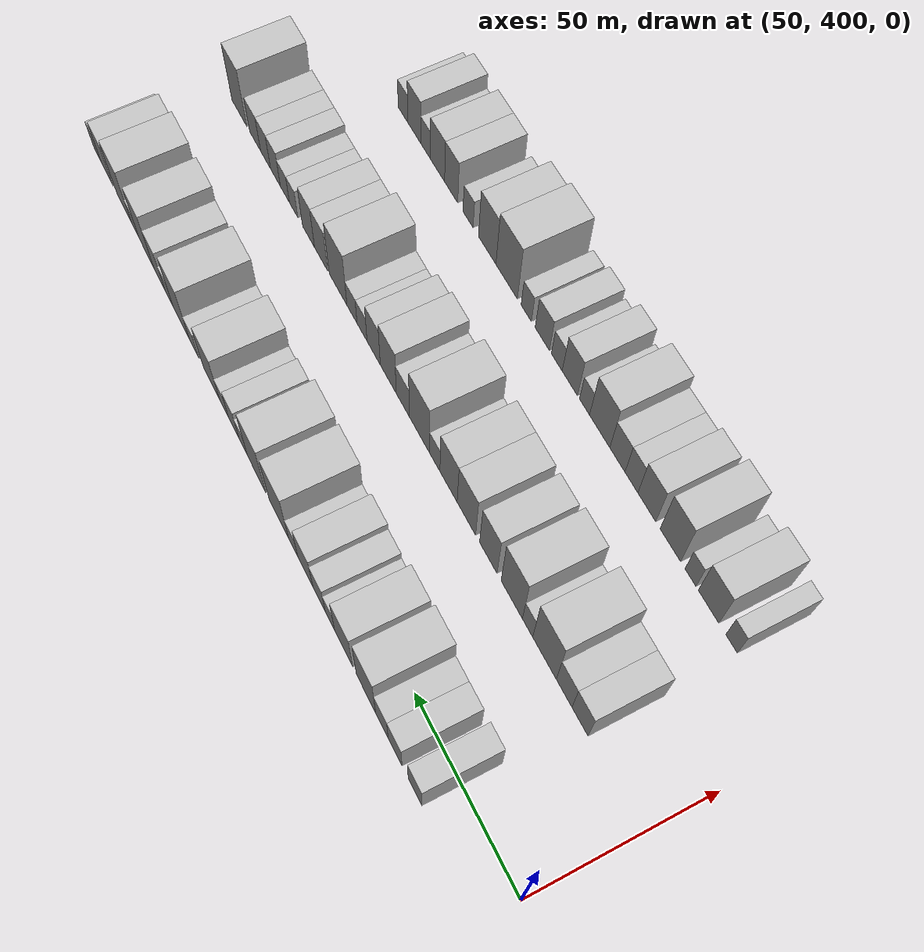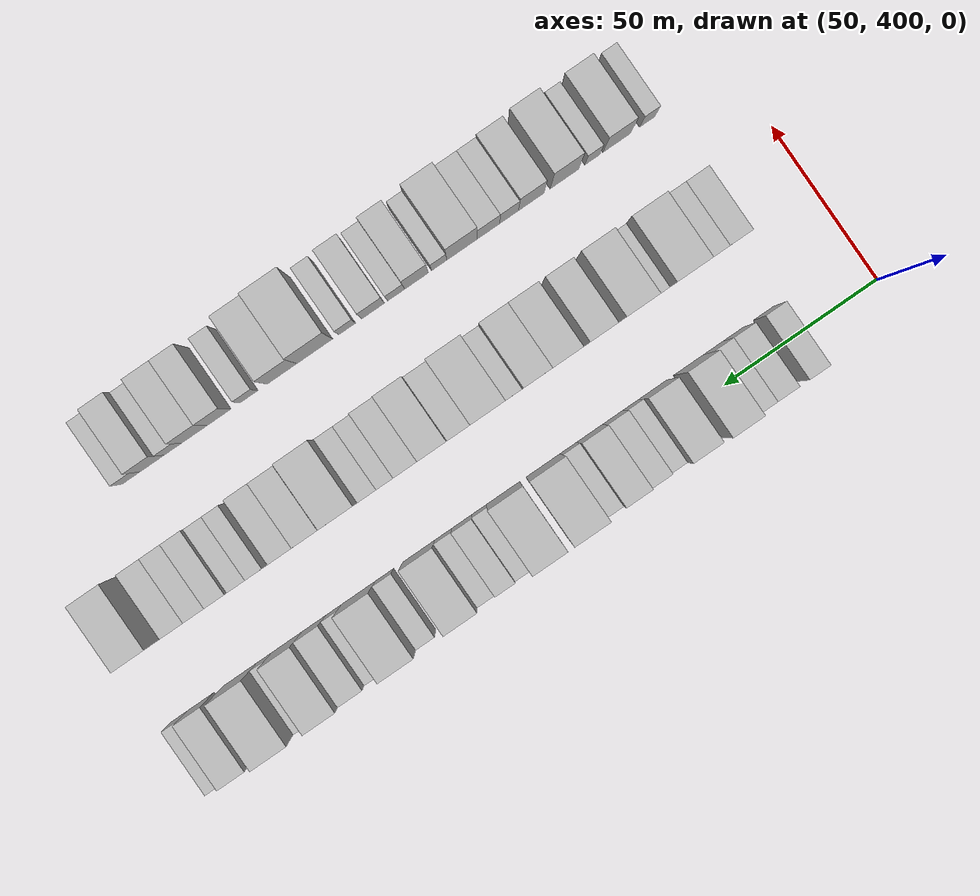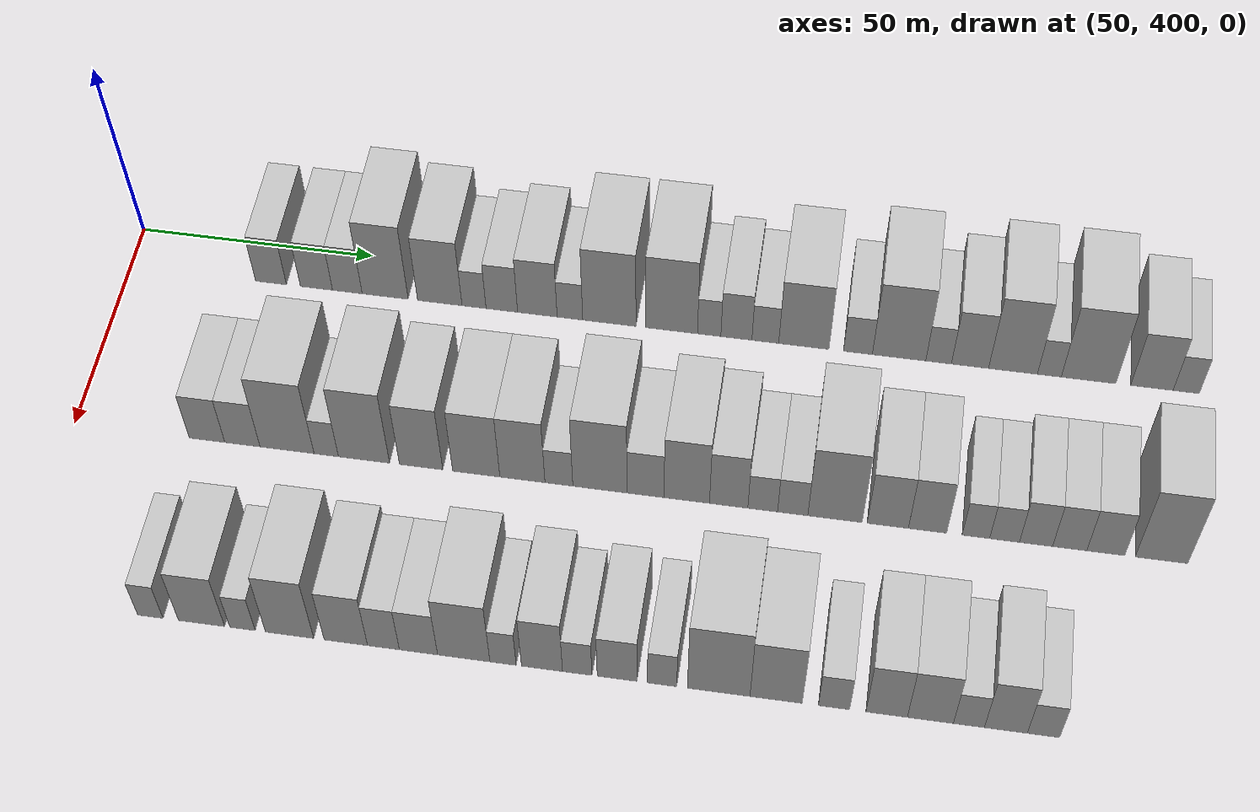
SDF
<sdf version="1.6">
 <world name="default">
  <model name="building_120">
   <static>1</static>
   <pose>50.0000 430.4025 0 0.000000 0.000000 0.000000</pose>
   <link name="link">
    <pose>0 0 7.50 0 0 0</pose>
    <collision name="collision"><geometry><box><size>20.0000 6.6508 15.0000</size></box></geometry></collision>
    <visual name="visual">
     <cast_shadows>0</cast_shadows>
     <geometry><box><size>20.0000 6.6508 15.0000</size></box></geometry>
     <material>
      <script>
       <uri>model://HANNAS_wall/materials/scripts</uri>
       <uri>model://HANNAS_wall/materials/textures</uri>
       <name>vrc/HANNAS_wall</name>
      </script>
     </material>
    </visual>
   </link>
  </model>
  <model name="building_121">
   <static>1</static>
   <pose>50.0000 440.1727 0 0.000000 0.000000 0.000000</pose>
   <link name="link">
    <pose>0 0 7.50 0 0 0</pose>
    <collision name="collision"><geometry><box><size>20.0000 6.8895 15.0000</size></box></geometry></collision>
    <visual name="visual">
     <cast_shadows>0</cast_shadows>
     <geometry><box><size>20.0000 6.8895 15.0000</size></box></geometry>
     <material>
      <script>
       <uri>model://HANNAS_wall/materials/scripts</uri>
       <uri>model://HANNAS_wall/materials/textures</uri>
       <name>vrc/HANNAS_wall</name>
      </script>
     </material>
    </visual>
   </link>
  </model>
  <model name="building_122">
   <static>1</static>
   <pose>50.0000 446.7971 0 0.000000 0.000000 0.000000</pose>
   <link name="link">
    <pose>0 0 7.50 0 0 0</pose>
    <collision name="collision"><geometry><box><size>20.0000 6.3591 15.0000</size></box></geometry></collision>
    <visual name="visual">
     <cast_shadows>0</cast_shadows>
     <geometry><box><size>20.0000 6.3591 15.0000</size></box></geometry>
     <material>
      <script>
       <uri>model://HANNAS_wall/materials/scripts</uri>
       <uri>model://HANNAS_wall/materials/textures</uri>
       <name>vrc/HANNAS_wall</name>
      </script>
     </material>
    </visual>
   </link>
  </model>
  <model name="building_123">
   <static>1</static>
   <pose>50.0000 454.8843 0 0.000000 0.000000 0.000000</pose>
   <link name="link">
    <pose>0 0 12.00 0 0 0</pose>
    <collision name="collision"><geometry><box><size>20.0000 9.8154 24.0000</size></box></geometry></collision>
    <visual name="visual">
     <cast_shadows>0</cast_shadows>
     <geometry><box><size>20.0000 9.8154 24.0000</size></box></geometry>
     <material>
      <script>
       <uri>model://HANNAS_wall/materials/scripts</uri>
       <uri>model://HANNAS_wall/materials/textures</uri>
       <name>vrc/HANNAS_wall</name>
      </script>
     </material>
    </visual>
   </link>
  </model>
  <model name="building_124">
   <static>1</static>
   <pose>50.0000 466.5108 0 0.000000 0.000000 0.000000</pose>
   <link name="link">
    <pose>0 0 10.50 0 0 0</pose>
    <collision name="collision"><geometry><box><size>20.0000 9.4374 21.0000</size></box></geometry></collision>
    <visual name="visual">
     <cast_shadows>0</cast_shadows>
     <geometry><box><size>20.0000 9.4374 21.0000</size></box></geometry>
     <material>
      <script>
       <uri>model://HANNAS_wall/materials/scripts</uri>
       <uri>model://HANNAS_wall/materials/textures</uri>
       <name>vrc/HANNAS_wall</name>
      </script>
     </material>
    </visual>
   </link>
  </model>
  <model name="building_125">
   <static>1</static>
   <pose>50.0000 473.7779 0 0.000000 0.000000 0.000000</pose>
   <link name="link">
    <pose>0 0 6.00 0 0 0</pose>
    <collision name="collision"><geometry><box><size>20.0000 5.0968 12.0000</size></box></geometry></collision>
    <visual name="visual">
     <cast_shadows>0</cast_shadows>
     <geometry><box><size>20.0000 5.0968 12.0000</size></box></geometry>
     <material>
      <script>
       <uri>model://HANNAS_wall/materials/scripts</uri>
       <uri>model://HANNAS_wall/materials/textures</uri>
       <name>vrc/HANNAS_wall</name>
      </script>
     </material>
    </visual>
   </link>
  </model>
  <model name="building_126">
   <static>1</static>
   <pose>50.0000 479.6608 0 0.000000 0.000000 0.000000</pose>
   <link name="link">
    <pose>0 0 7.50 0 0 0</pose>
    <collision name="collision"><geometry><box><size>20.0000 6.6692 15.0000</size></box></geometry></collision>
    <visual name="visual">
     <cast_shadows>0</cast_shadows>
     <geometry><box><size>20.0000 6.6692 15.0000</size></box></geometry>
     <material>
      <script>
       <uri>model://HANNAS_wall/materials/scripts</uri>
       <uri>model://HANNAS_wall/materials/textures</uri>
       <name>vrc/HANNAS_wall</name>
      </script>
     </material>
    </visual>
   </link>
  </model>
  <model name="building_127">
   <static>1</static>
   <pose>50.0000 487.1593 0 0.000000 0.000000 0.000000</pose>
   <link name="link">
    <pose>0 0 9.00 0 0 0</pose>
    <collision name="collision"><geometry><box><size>20.0000 8.3279 18.0000</size></box></geometry></collision>
    <visual name="visual">
     <cast_shadows>0</cast_shadows>
     <geometry><box><size>20.0000 8.3279 18.0000</size></box></geometry>
     <material>
      <script>
       <uri>model://HANNAS_wall/materials/scripts</uri>
       <uri>model://HANNAS_wall/materials/textures</uri>
       <name>vrc/HANNAS_wall</name>
      </script>
     </material>
    </visual>
   </link>
  </model>
  <model name="building_128">
   <static>1</static>
   <pose>50.0000 494.0206 0 0.000000 0.000000 0.000000</pose>
   <link name="link">
    <pose>0 0 6.00 0 0 0</pose>
    <collision name="collision"><geometry><box><size>20.0000 5.3946 12.0000</size></box></geometry></collision>
    <visual name="visual">
     <cast_shadows>0</cast_shadows>
     <geometry><box><size>20.0000 5.3946 12.0000</size></box></geometry>
     <material>
      <script>
       <uri>model://HANNAS_wall/materials/scripts</uri>
       <uri>model://HANNAS_wall/materials/textures</uri>
       <name>vrc/HANNAS_wall</name>
      </script>
     </material>
    </visual>
   </link>
  </model>
  <model name="building_129">
   <static>1</static>
   <pose>50.0000 502.2996 0 0.000000 0.000000 0.000000</pose>
   <link name="link">
    <pose>0 0 12.00 0 0 0</pose>
    <collision name="collision"><geometry><box><size>20.0000 11.1634 24.0000</size></box></geometry></collision>
    <visual name="visual">
     <cast_shadows>0</cast_shadows>
     <geometry><box><size>20.0000 11.1634 24.0000</size></box></geometry>
     <material>
      <script>
       <uri>model://HANNAS_wall/materials/scripts</uri>
       <uri>model://HANNAS_wall/materials/textures</uri>
       <name>vrc/HANNAS_wall</name>
      </script>
     </material>
    </visual>
   </link>
  </model>
  <model name="building_130">
   <static>1</static>
   <pose>50.0000 515.2925 0 0.000000 0.000000 0.000000</pose>
   <link name="link">
    <pose>0 0 12.00 0 0 0</pose>
    <collision name="collision"><geometry><box><size>20.0000 10.8223 24.0000</size></box></geometry></collision>
    <visual name="visual">
     <cast_shadows>0</cast_shadows>
     <geometry><box><size>20.0000 10.8223 24.0000</size></box></geometry>
     <material>
      <script>
       <uri>model://HANNAS_wall/materials/scripts</uri>
       <uri>model://HANNAS_wall/materials/textures</uri>
       <name>vrc/HANNAS_wall</name>
      </script>
     </material>
    </visual>
   </link>
  </model>
  <model name="building_131">
   <static>1</static>
   <pose>50.0000 523.1406 0 0.000000 0.000000 0.000000</pose>
   <link name="link">
    <pose>0 0 6.00 0 0 0</pose>
    <collision name="collision"><geometry><box><size>20.0000 4.8738 12.0000</size></box></geometry></collision>
    <visual name="visual">
     <cast_shadows>0</cast_shadows>
     <geometry><box><size>20.0000 4.8738 12.0000</size></box></geometry>
     <material>
      <script>
       <uri>model://HANNAS_wall/materials/scripts</uri>
       <uri>model://HANNAS_wall/materials/textures</uri>
       <name>vrc/HANNAS_wall</name>
      </script>
     </material>
    </visual>
   </link>
  </model>
  <model name="building_132">
   <static>1</static>
   <pose>50.0000 528.8001 0 0.000000 0.000000 0.000000</pose>
   <link name="link">
    <pose>0 0 7.50 0 0 0</pose>
    <collision name="collision"><geometry><box><size>20.0000 6.4453 15.0000</size></box></geometry></collision>
    <visual name="visual">
     <cast_shadows>0</cast_shadows>
     <geometry><box><size>20.0000 6.4453 15.0000</size></box></geometry>
     <material>
      <script>
       <uri>model://HANNAS_wall/materials/scripts</uri>
       <uri>model://HANNAS_wall/materials/textures</uri>
       <name>vrc/HANNAS_wall</name>
      </script>
     </material>
    </visual>
   </link>
  </model>
  <model name="building_133">
   <static>1</static>
   <pose>50.0000 534.7990 0 0.000000 0.000000 0.000000</pose>
   <link name="link">
    <pose>0 0 6.00 0 0 0</pose>
    <collision name="collision"><geometry><box><size>20.0000 5.5525 12.0000</size></box></geometry></collision>
    <visual name="visual">
     <cast_shadows>0</cast_shadows>
     <geometry><box><size>20.0000 5.5525 12.0000</size></box></geometry>
     <material>
      <script>
       <uri>model://HANNAS_wall/materials/scripts</uri>
       <uri>model://HANNAS_wall/materials/textures</uri>
       <name>vrc/HANNAS_wall</name>
      </script>
     </material>
    </visual>
   </link>
  </model>
  <model name="building_134">
   <static>1</static>
   <pose>50.0000 542.7679 0 0.000000 0.000000 0.000000</pose>
   <link name="link">
    <pose>0 0 10.50 0 0 0</pose>
    <collision name="collision"><geometry><box><size>20.0000 10.3852 21.0000</size></box></geometry></collision>
    <visual name="visual">
     <cast_shadows>0</cast_shadows>
     <geometry><box><size>20.0000 10.3852 21.0000</size></box></geometry>
     <material>
      <script>
       <uri>model://HANNAS_wall/materials/scripts</uri>
       <uri>model://HANNAS_wall/materials/textures</uri>
       <name>vrc/HANNAS_wall</name>
      </script>
     </material>
    </visual>
   </link>
  </model>
  <model name="building_135">
   <static>1</static>
   <pose>50.0000 553.9243 0 0.000000 0.000000 0.000000</pose>
   <link name="link">
    <pose>0 0 6.00 0 0 0</pose>
    <collision name="collision"><geometry><box><size>20.0000 5.9277 12.0000</size></box></geometry></collision>
    <visual name="visual">
     <cast_shadows>0</cast_shadows>
     <geometry><box><size>20.0000 5.9277 12.0000</size></box></geometry>
     <material>
      <script>
       <uri>model://HANNAS_wall/materials/scripts</uri>
       <uri>model://HANNAS_wall/materials/textures</uri>
       <name>vrc/HANNAS_wall</name>
      </script>
     </material>
    </visual>
   </link>
  </model>
  <model name="building_136">
   <static>1</static>
   <pose>50.0000 562.3670 0 0.000000 0.000000 0.000000</pose>
   <link name="link">
    <pose>0 0 12.00 0 0 0</pose>
    <collision name="collision"><geometry><box><size>20.0000 10.9577 24.0000</size></box></geometry></collision>
    <visual name="visual">
     <cast_shadows>0</cast_shadows>
     <geometry><box><size>20.0000 10.9577 24.0000</size></box></geometry>
     <material>
      <script>
       <uri>model://HANNAS_wall/materials/scripts</uri>
       <uri>model://HANNAS_wall/materials/textures</uri>
       <name>vrc/HANNAS_wall</name>
      </script>
     </material>
    </visual>
   </link>
  </model>
  <model name="building_137">
   <static>1</static>
   <pose>50.0000 570.4646 0 0.000000 0.000000 0.000000</pose>
   <link name="link">
    <pose>0 0 6.00 0 0 0</pose>
    <collision name="collision"><geometry><box><size>20.0000 5.2376 12.0000</size></box></geometry></collision>
    <visual name="visual">
     <cast_shadows>0</cast_shadows>
     <geometry><box><size>20.0000 5.2376 12.0000</size></box></geometry>
     <material>
      <script>
       <uri>model://HANNAS_wall/materials/scripts</uri>
       <uri>model://HANNAS_wall/materials/textures</uri>
       <name>vrc/HANNAS_wall</name>
      </script>
     </material>
    </visual>
   </link>
  </model>
  <model name="building_138">
   <static>1</static>
   <pose>50.0000 576.8740 0 0.000000 0.000000 0.000000</pose>
   <link name="link">
    <pose>0 0 9.00 0 0 0</pose>
    <collision name="collision"><geometry><box><size>20.0000 7.5812 18.0000</size></box></geometry></collision>
    <visual name="visual">
     <cast_shadows>0</cast_shadows>
     <geometry><box><size>20.0000 7.5812 18.0000</size></box></geometry>
     <material>
      <script>
       <uri>model://HANNAS_wall/materials/scripts</uri>
       <uri>model://HANNAS_wall/materials/textures</uri>
       <name>vrc/HANNAS_wall</name>
      </script>
     </material>
    </visual>
   </link>
  </model>
  <model name="building_139">
   <static>1</static>
   <pose>50.0000 585.6315 0 0.000000 0.000000 0.000000</pose>
   <link name="link">
    <pose>0 0 12.00 0 0 0</pose>
    <collision name="collision"><geometry><box><size>20.0000 9.9339 24.0000</size></box></geometry></collision>
    <visual name="visual">
     <cast_shadows>0</cast_shadows>
     <geometry><box><size>20.0000 9.9339 24.0000</size></box></geometry>
     <material>
      <script>
       <uri>model://HANNAS_wall/materials/scripts</uri>
       <uri>model://HANNAS_wall/materials/textures</uri>
       <name>vrc/HANNAS_wall</name>
      </script>
     </material>
    </visual>
   </link>
  </model>
  <model name="building_140">
   <static>1</static>
   <pose>50.0000 593.0165 0 0.000000 0.000000 0.000000</pose>
   <link name="link">
    <pose>0 0 6.00 0 0 0</pose>
    <collision name="collision"><geometry><box><size>20.0000 4.8361 12.0000</size></box></geometry></collision>
    <visual name="visual">
     <cast_shadows>0</cast_shadows>
     <geometry><box><size>20.0000 4.8361 12.0000</size></box></geometry>
     <material>
      <script>
       <uri>model://HANNAS_wall/materials/scripts</uri>
       <uri>model://HANNAS_wall/materials/textures</uri>
       <name>vrc/HANNAS_wall</name>
      </script>
     </material>
    </visual>
   </link>
  </model>
  <model name="building_141">
   <static>1</static>
   <pose>50.0000 600.9556 0 0.000000 0.000000 0.000000</pose>
   <link name="link">
    <pose>0 0 12.00 0 0 0</pose>
    <collision name="collision"><geometry><box><size>20.0000 11.0420 24.0000</size></box></geometry></collision>
    <visual name="visual">
     <cast_shadows>0</cast_shadows>
     <geometry><box><size>20.0000 11.0420 24.0000</size></box></geometry>
     <material>
      <script>
       <uri>model://HANNAS_wall/materials/scripts</uri>
       <uri>model://HANNAS_wall/materials/textures</uri>
       <name>vrc/HANNAS_wall</name>
      </script>
     </material>
    </visual>
   </link>
  </model>
  <model name="building_142">
   <static>1</static>
   <pose>50.0000 613.7397 0 0.000000 0.000000 0.000000</pose>
   <link name="link">
    <pose>0 0 9.00 0 0 0</pose>
    <collision name="collision"><geometry><box><size>20.0000 8.5261 18.0000</size></box></geometry></collision>
    <visual name="visual">
     <cast_shadows>0</cast_shadows>
     <geometry><box><size>20.0000 8.5261 18.0000</size></box></geometry>
     <material>
      <script>
       <uri>model://HANNAS_wall/materials/scripts</uri>
       <uri>model://HANNAS_wall/materials/textures</uri>
       <name>vrc/HANNAS_wall</name>
      </script>
     </material>
    </visual>
   </link>
  </model>
  <model name="building_143">
   <static>1</static>
   <pose>50.0000 620.6353 0 0.000000 0.000000 0.000000</pose>
   <link name="link">
    <pose>0 0 6.00 0 0 0</pose>
    <collision name="collision"><geometry><box><size>20.0000 5.2652 12.0000</size></box></geometry></collision>
    <visual name="visual">
     <cast_shadows>0</cast_shadows>
     <geometry><box><size>20.0000 5.2652 12.0000</size></box></geometry>
     <material>
      <script>
       <uri>model://HANNAS_wall/materials/scripts</uri>
       <uri>model://HANNAS_wall/materials/textures</uri>
       <name>vrc/HANNAS_wall</name>
      </script>
     </material>
    </visual>
   </link>
  </model>
  <model name="building_259">
   <static>1</static>
   <pose>90.0000 427.2750 0 0.000000 0.000000 0.000000</pose>
   <link name="link">
    <pose>0 0 7.50 0 0 0</pose>
    <collision name="collision"><geometry><box><size>20.0000 7.2798 15.0000</size></box></geometry></collision>
    <visual name="visual">
     <cast_shadows>0</cast_shadows>
     <geometry><box><size>20.0000 7.2798 15.0000</size></box></geometry>
     <material>
      <script>
       <uri>model://HANNAS_wall/materials/scripts</uri>
       <uri>model://HANNAS_wall/materials/textures</uri>
       <name>vrc/HANNAS_wall</name>
      </script>
     </material>
    </visual>
   </link>
  </model>
  <model name="building_260">
   <static>1</static>
   <pose>90.0000 434.5173 0 0.000000 0.000000 0.000000</pose>
   <link name="link">
    <pose>0 0 7.50 0 0 0</pose>
    <collision name="collision"><geometry><box><size>20.0000 7.2048 15.0000</size></box></geometry></collision>
    <visual name="visual">
     <cast_shadows>0</cast_shadows>
     <geometry><box><size>20.0000 7.2048 15.0000</size></box></geometry>
     <material>
      <script>
       <uri>model://HANNAS_wall/materials/scripts</uri>
       <uri>model://HANNAS_wall/materials/textures</uri>
       <name>vrc/HANNAS_wall</name>
      </script>
     </material>
    </visual>
   </link>
  </model>
  <model name="building_261">
   <static>1</static>
   <pose>90.0000 443.6315 0 0.000000 0.000000 0.000000</pose>
   <link name="link">
    <pose>0 0 12.00 0 0 0</pose>
    <collision name="collision"><geometry><box><size>20.0000 11.0235 24.0000</size></box></geometry></collision>
    <visual name="visual">
     <cast_shadows>0</cast_shadows>
     <geometry><box><size>20.0000 11.0235 24.0000</size></box></geometry>
     <material>
      <script>
       <uri>model://HANNAS_wall/materials/scripts</uri>
       <uri>model://HANNAS_wall/materials/textures</uri>
       <name>vrc/HANNAS_wall</name>
      </script>
     </material>
    </visual>
   </link>
  </model>
  <model name="building_262">
   <static>1</static>
   <pose>90.0000 451.6220 0 0.000000 0.000000 0.000000</pose>
   <link name="link">
    <pose>0 0 6.00 0 0 0</pose>
    <collision name="collision"><geometry><box><size>20.0000 4.9575 12.0000</size></box></geometry></collision>
    <visual name="visual">
     <cast_shadows>0</cast_shadows>
     <geometry><box><size>20.0000 4.9575 12.0000</size></box></geometry>
     <material>
      <script>
       <uri>model://HANNAS_wall/materials/scripts</uri>
       <uri>model://HANNAS_wall/materials/textures</uri>
       <name>vrc/HANNAS_wall</name>
      </script>
     </material>
    </visual>
   </link>
  </model>
  <model name="building_263">
   <static>1</static>
   <pose>90.0000 459.2839 0 0.000000 0.000000 0.000000</pose>
   <link name="link">
    <pose>0 0 12.00 0 0 0</pose>
    <collision name="collision"><geometry><box><size>20.0000 10.3664 24.0000</size></box></geometry></collision>
    <visual name="visual">
     <cast_shadows>0</cast_shadows>
     <geometry><box><size>20.0000 10.3664 24.0000</size></box></geometry>
     <material>
      <script>
       <uri>model://HANNAS_wall/materials/scripts</uri>
       <uri>model://HANNAS_wall/materials/textures</uri>
       <name>vrc/HANNAS_wall</name>
      </script>
     </material>
    </visual>
   </link>
  </model>
  <model name="building_264">
   <static>1</static>
   <pose>90.0000 470.8343 0 0.000000 0.000000 0.000000</pose>
   <link name="link">
    <pose>0 0 10.50 0 0 0</pose>
    <collision name="collision"><geometry><box><size>20.0000 8.7343 21.0000</size></box></geometry></collision>
    <visual name="visual">
     <cast_shadows>0</cast_shadows>
     <geometry><box><size>20.0000 8.7343 21.0000</size></box></geometry>
     <material>
      <script>
       <uri>model://HANNAS_wall/materials/scripts</uri>
       <uri>model://HANNAS_wall/materials/textures</uri>
       <name>vrc/HANNAS_wall</name>
      </script>
     </material>
    </visual>
   </link>
  </model>
  <model name="building_265">
   <static>1</static>
   <pose>90.0000 481.9332 0 0.000000 0.000000 0.000000</pose>
   <link name="link">
    <pose>0 0 10.50 0 0 0</pose>
    <collision name="collision"><geometry><box><size>20.0000 9.4636 21.0000</size></box></geometry></collision>
    <visual name="visual">
     <cast_shadows>0</cast_shadows>
     <geometry><box><size>20.0000 9.4636 21.0000</size></box></geometry>
     <material>
      <script>
       <uri>model://HANNAS_wall/materials/scripts</uri>
       <uri>model://HANNAS_wall/materials/textures</uri>
       <name>vrc/HANNAS_wall</name>
      </script>
     </material>
    </visual>
   </link>
  </model>
  <model name="building_266">
   <static>1</static>
   <pose>90.0000 491.1801 0 0.000000 0.000000 0.000000</pose>
   <link name="link">
    <pose>0 0 10.50 0 0 0</pose>
    <collision name="collision"><geometry><box><size>20.0000 9.0303 21.0000</size></box></geometry></collision>
    <visual name="visual">
     <cast_shadows>0</cast_shadows>
     <geometry><box><size>20.0000 9.0303 21.0000</size></box></geometry>
     <material>
      <script>
       <uri>model://HANNAS_wall/materials/scripts</uri>
       <uri>model://HANNAS_wall/materials/textures</uri>
       <name>vrc/HANNAS_wall</name>
      </script>
     </material>
    </visual>
   </link>
  </model>
  <model name="building_267">
   <static>1</static>
   <pose>90.0000 498.4771 0 0.000000 0.000000 0.000000</pose>
   <link name="link">
    <pose>0 0 6.00 0 0 0</pose>
    <collision name="collision"><geometry><box><size>20.0000 5.5636 12.0000</size></box></geometry></collision>
    <visual name="visual">
     <cast_shadows>0</cast_shadows>
     <geometry><box><size>20.0000 5.5636 12.0000</size></box></geometry>
     <material>
      <script>
       <uri>model://HANNAS_wall/materials/scripts</uri>
       <uri>model://HANNAS_wall/materials/textures</uri>
       <name>vrc/HANNAS_wall</name>
      </script>
     </material>
    </visual>
   </link>
  </model>
  <model name="building_268">
   <static>1</static>
   <pose>90.0000 506.6653 0 0.000000 0.000000 0.000000</pose>
   <link name="link">
    <pose>0 0 12.00 0 0 0</pose>
    <collision name="collision"><geometry><box><size>20.0000 10.8128 24.0000</size></box></geometry></collision>
    <visual name="visual">
     <cast_shadows>0</cast_shadows>
     <geometry><box><size>20.0000 10.8128 24.0000</size></box></geometry>
     <material>
      <script>
       <uri>model://HANNAS_wall/materials/scripts</uri>
       <uri>model://HANNAS_wall/materials/textures</uri>
       <name>vrc/HANNAS_wall</name>
      </script>
     </material>
    </visual>
   </link>
  </model>
  <model name="building_269">
   <static>1</static>
   <pose>90.0000 515.7173 0 0.000000 0.000000 0.000000</pose>
   <link name="link">
    <pose>0 0 7.50 0 0 0</pose>
    <collision name="collision"><geometry><box><size>20.0000 7.2911 15.0000</size></box></geometry></collision>
    <visual name="visual">
     <cast_shadows>0</cast_shadows>
     <geometry><box><size>20.0000 7.2911 15.0000</size></box></geometry>
     <material>
      <script>
       <uri>model://HANNAS_wall/materials/scripts</uri>
       <uri>model://HANNAS_wall/materials/textures</uri>
       <name>vrc/HANNAS_wall</name>
      </script>
     </material>
    </visual>
   </link>
  </model>
  <model name="building_270">
   <static>1</static>
   <pose>90.0000 523.8586 0 0.000000 0.000000 0.000000</pose>
   <link name="link">
    <pose>0 0 10.50 0 0 0</pose>
    <collision name="collision"><geometry><box><size>20.0000 8.9915 21.0000</size></box></geometry></collision>
    <visual name="visual">
     <cast_shadows>0</cast_shadows>
     <geometry><box><size>20.0000 8.9915 21.0000</size></box></geometry>
     <material>
      <script>
       <uri>model://HANNAS_wall/materials/scripts</uri>
       <uri>model://HANNAS_wall/materials/textures</uri>
       <name>vrc/HANNAS_wall</name>
      </script>
     </material>
    </visual>
   </link>
  </model>
  <model name="building_271">
   <static>1</static>
   <pose>90.0000 532.1349 0 0.000000 0.000000 0.000000</pose>
   <link name="link">
    <pose>0 0 9.00 0 0 0</pose>
    <collision name="collision"><geometry><box><size>20.0000 7.5613 18.0000</size></box></geometry></collision>
    <visual name="visual">
     <cast_shadows>0</cast_shadows>
     <geometry><box><size>20.0000 7.5613 18.0000</size></box></geometry>
     <material>
      <script>
       <uri>model://HANNAS_wall/materials/scripts</uri>
       <uri>model://HANNAS_wall/materials/textures</uri>
       <name>vrc/HANNAS_wall</name>
      </script>
     </material>
    </visual>
   </link>
  </model>
  <model name="building_272">
   <static>1</static>
   <pose>90.0000 538.8327 0 0.000000 0.000000 0.000000</pose>
   <link name="link">
    <pose>0 0 6.00 0 0 0</pose>
    <collision name="collision"><geometry><box><size>20.0000 5.8344 12.0000</size></box></geometry></collision>
    <visual name="visual">
     <cast_shadows>0</cast_shadows>
     <geometry><box><size>20.0000 5.8344 12.0000</size></box></geometry>
     <material>
      <script>
       <uri>model://HANNAS_wall/materials/scripts</uri>
       <uri>model://HANNAS_wall/materials/textures</uri>
       <name>vrc/HANNAS_wall</name>
      </script>
     </material>
    </visual>
   </link>
  </model>
  <model name="building_273">
   <static>1</static>
   <pose>90.0000 544.7133 0 0.000000 0.000000 0.000000</pose>
   <link name="link">
    <pose>0 0 6.00 0 0 0</pose>
    <collision name="collision"><geometry><box><size>20.0000 5.9268 12.0000</size></box></geometry></collision>
    <visual name="visual">
     <cast_shadows>0</cast_shadows>
     <geometry><box><size>20.0000 5.9268 12.0000</size></box></geometry>
     <material>
      <script>
       <uri>model://HANNAS_wall/materials/scripts</uri>
       <uri>model://HANNAS_wall/materials/textures</uri>
       <name>vrc/HANNAS_wall</name>
      </script>
     </material>
    </visual>
   </link>
  </model>
  <model name="building_274">
   <static>1</static>
   <pose>90.0000 552.9871 0 0.000000 0.000000 0.000000</pose>
   <link name="link">
    <pose>0 0 12.00 0 0 0</pose>
    <collision name="collision"><geometry><box><size>20.0000 10.6209 24.0000</size></box></geometry></collision>
    <visual name="visual">
     <cast_shadows>0</cast_shadows>
     <geometry><box><size>20.0000 10.6209 24.0000</size></box></geometry>
     <material>
      <script>
       <uri>model://HANNAS_wall/materials/scripts</uri>
       <uri>model://HANNAS_wall/materials/textures</uri>
       <name>vrc/HANNAS_wall</name>
      </script>
     </material>
    </visual>
   </link>
  </model>
  <model name="building_275">
   <static>1</static>
   <pose>90.0000 563.3046 0 0.000000 0.000000 0.000000</pose>
   <link name="link">
    <pose>0 0 9.00 0 0 0</pose>
    <collision name="collision"><geometry><box><size>20.0000 8.0142 18.0000</size></box></geometry></collision>
    <visual name="visual">
     <cast_shadows>0</cast_shadows>
     <geometry><box><size>20.0000 8.0142 18.0000</size></box></geometry>
     <material>
      <script>
       <uri>model://HANNAS_wall/materials/scripts</uri>
       <uri>model://HANNAS_wall/materials/textures</uri>
       <name>vrc/HANNAS_wall</name>
      </script>
     </material>
    </visual>
   </link>
  </model>
  <model name="building_276">
   <static>1</static>
   <pose>90.0000 571.0174 0 0.000000 0.000000 0.000000</pose>
   <link name="link">
    <pose>0 0 9.00 0 0 0</pose>
    <collision name="collision"><geometry><box><size>20.0000 7.4113 18.0000</size></box></geometry></collision>
    <visual name="visual">
     <cast_shadows>0</cast_shadows>
     <geometry><box><size>20.0000 7.4113 18.0000</size></box></geometry>
     <material>
      <script>
       <uri>model://HANNAS_wall/materials/scripts</uri>
       <uri>model://HANNAS_wall/materials/textures</uri>
       <name>vrc/HANNAS_wall</name>
      </script>
     </material>
    </visual>
   </link>
  </model>
  <model name="building_277">
   <static>1</static>
   <pose>90.0000 580.3869 0 0.000000 0.000000 0.000000</pose>
   <link name="link">
    <pose>0 0 6.00 0 0 0</pose>
    <collision name="collision"><geometry><box><size>20.0000 5.3275 12.0000</size></box></geometry></collision>
    <visual name="visual">
     <cast_shadows>0</cast_shadows>
     <geometry><box><size>20.0000 5.3275 12.0000</size></box></geometry>
     <material>
      <script>
       <uri>model://HANNAS_wall/materials/scripts</uri>
       <uri>model://HANNAS_wall/materials/textures</uri>
       <name>vrc/HANNAS_wall</name>
      </script>
     </material>
    </visual>
   </link>
  </model>
  <model name="building_278">
   <static>1</static>
   <pose>90.0000 585.9181 0 0.000000 0.000000 0.000000</pose>
   <link name="link">
    <pose>0 0 6.00 0 0 0</pose>
    <collision name="collision"><geometry><box><size>20.0000 5.7350 12.0000</size></box></geometry></collision>
    <visual name="visual">
     <cast_shadows>0</cast_shadows>
     <geometry><box><size>20.0000 5.7350 12.0000</size></box></geometry>
     <material>
      <script>
       <uri>model://HANNAS_wall/materials/scripts</uri>
       <uri>model://HANNAS_wall/materials/textures</uri>
       <name>vrc/HANNAS_wall</name>
      </script>
     </material>
    </visual>
   </link>
  </model>
  <model name="building_279">
   <static>1</static>
   <pose>90.0000 591.9754 0 0.000000 0.000000 0.000000</pose>
   <link name="link">
    <pose>0 0 7.50 0 0 0</pose>
    <collision name="collision"><geometry><box><size>20.0000 6.3795 15.0000</size></box></geometry></collision>
    <visual name="visual">
     <cast_shadows>0</cast_shadows>
     <geometry><box><size>20.0000 6.3795 15.0000</size></box></geometry>
     <material>
      <script>
       <uri>model://HANNAS_wall/materials/scripts</uri>
       <uri>model://HANNAS_wall/materials/textures</uri>
       <name>vrc/HANNAS_wall</name>
      </script>
     </material>
    </visual>
   </link>
  </model>
  <model name="building_280">
   <static>1</static>
   <pose>90.0000 598.4471 0 0.000000 0.000000 0.000000</pose>
   <link name="link">
    <pose>0 0 7.50 0 0 0</pose>
    <collision name="collision"><geometry><box><size>20.0000 6.5640 15.0000</size></box></geometry></collision>
    <visual name="visual">
     <cast_shadows>0</cast_shadows>
     <geometry><box><size>20.0000 6.5640 15.0000</size></box></geometry>
     <material>
      <script>
       <uri>model://HANNAS_wall/materials/scripts</uri>
       <uri>model://HANNAS_wall/materials/textures</uri>
       <name>vrc/HANNAS_wall</name>
      </script>
     </material>
    </visual>
   </link>
  </model>
  <model name="building_281">
   <static>1</static>
   <pose>90.0000 605.3638 0 0.000000 0.000000 0.000000</pose>
   <link name="link">
    <pose>0 0 7.50 0 0 0</pose>
    <collision name="collision"><geometry><box><size>20.0000 7.2694 15.0000</size></box></geometry></collision>
    <visual name="visual">
     <cast_shadows>0</cast_shadows>
     <geometry><box><size>20.0000 7.2694 15.0000</size></box></geometry>
     <material>
      <script>
       <uri>model://HANNAS_wall/materials/scripts</uri>
       <uri>model://HANNAS_wall/materials/textures</uri>
       <name>vrc/HANNAS_wall</name>
      </script>
     </material>
    </visual>
   </link>
  </model>
  <model name="building_282">
   <static>1</static>
   <pose>90.0000 616.0104 0 0.000000 0.000000 0.000000</pose>
   <link name="link">
    <pose>0 0 12.00 0 0 0</pose>
    <collision name="collision"><geometry><box><size>20.0000 10.0238 24.0000</size></box></geometry></collision>
    <visual name="visual">
     <cast_shadows>0</cast_shadows>
     <geometry><box><size>20.0000 10.0238 24.0000</size></box></geometry>
     <material>
      <script>
       <uri>model://HANNAS_wall/materials/scripts</uri>
       <uri>model://HANNAS_wall/materials/textures</uri>
       <name>vrc/HANNAS_wall</name>
      </script>
     </material>
    </visual>
   </link>
  </model>
  <model name="building_400">
   <static>1</static>
   <pose>130.0000 426.9281 0 0.000000 0.000000 0.000000</pose>
   <link name="link">
    <pose>0 0 6.00 0 0 0</pose>
    <collision name="collision"><geometry><box><size>20.0000 4.9386 12.0000</size></box></geometry></collision>
    <visual name="visual">
     <cast_shadows>0</cast_shadows>
     <geometry><box><size>20.0000 4.9386 12.0000</size></box></geometry>
     <material>
      <script>
       <uri>model://HANNAS_wall/materials/scripts</uri>
       <uri>model://HANNAS_wall/materials/textures</uri>
       <name>vrc/HANNAS_wall</name>
      </script>
     </material>
    </visual>
   </link>
  </model>
  <model name="building_401">
   <static>1</static>
   <pose>130.0000 436.8785 0 0.000000 0.000000 0.000000</pose>
   <link name="link">
    <pose>0 0 9.00 0 0 0</pose>
    <collision name="collision"><geometry><box><size>20.0000 8.9621 18.0000</size></box></geometry></collision>
    <visual name="visual">
     <cast_shadows>0</cast_shadows>
     <geometry><box><size>20.0000 8.9621 18.0000</size></box></geometry>
     <material>
      <script>
       <uri>model://HANNAS_wall/materials/scripts</uri>
       <uri>model://HANNAS_wall/materials/textures</uri>
       <name>vrc/HANNAS_wall</name>
      </script>
     </material>
    </visual>
   </link>
  </model>
  <model name="building_402">
   <static>1</static>
   <pose>130.0000 444.8085 0 0.000000 0.000000 0.000000</pose>
   <link name="link">
    <pose>0 0 6.00 0 0 0</pose>
    <collision name="collision"><geometry><box><size>20.0000 4.8980 12.0000</size></box></geometry></collision>
    <visual name="visual">
     <cast_shadows>0</cast_shadows>
     <geometry><box><size>20.0000 4.8980 12.0000</size></box></geometry>
     <material>
      <script>
       <uri>model://HANNAS_wall/materials/scripts</uri>
       <uri>model://HANNAS_wall/materials/textures</uri>
       <name>vrc/HANNAS_wall</name>
      </script>
     </material>
    </visual>
   </link>
  </model>
  <model name="building_403">
   <static>1</static>
   <pose>130.0000 453.9089 0 0.000000 0.000000 0.000000</pose>
   <link name="link">
    <pose>0 0 10.50 0 0 0</pose>
    <collision name="collision"><geometry><box><size>20.0000 9.3029 21.0000</size></box></geometry></collision>
    <visual name="visual">
     <cast_shadows>0</cast_shadows>
     <geometry><box><size>20.0000 9.3029 21.0000</size></box></geometry>
     <material>
      <script>
       <uri>model://HANNAS_wall/materials/scripts</uri>
       <uri>model://HANNAS_wall/materials/textures</uri>
       <name>vrc/HANNAS_wall</name>
      </script>
     </material>
    </visual>
   </link>
  </model>
  <model name="building_404">
   <static>1</static>
   <pose>130.0000 464.7253 0 0.000000 0.000000 0.000000</pose>
   <link name="link">
    <pose>0 0 9.00 0 0 0</pose>
    <collision name="collision"><geometry><box><size>20.0000 8.3300 18.0000</size></box></geometry></collision>
    <visual name="visual">
     <cast_shadows>0</cast_shadows>
     <geometry><box><size>20.0000 8.3300 18.0000</size></box></geometry>
     <material>
      <script>
       <uri>model://HANNAS_wall/materials/scripts</uri>
       <uri>model://HANNAS_wall/materials/textures</uri>
       <name>vrc/HANNAS_wall</name>
      </script>
     </material>
    </visual>
   </link>
  </model>
  <model name="building_405">
   <static>1</static>
   <pose>130.0000 471.9332 0 0.000000 0.000000 0.000000</pose>
   <link name="link">
    <pose>0 0 7.50 0 0 0</pose>
    <collision name="collision"><geometry><box><size>20.0000 6.0857 15.0000</size></box></geometry></collision>
    <visual name="visual">
     <cast_shadows>0</cast_shadows>
     <geometry><box><size>20.0000 6.0857 15.0000</size></box></geometry>
     <material>
      <script>
       <uri>model://HANNAS_wall/materials/scripts</uri>
       <uri>model://HANNAS_wall/materials/textures</uri>
       <name>vrc/HANNAS_wall</name>
      </script>
     </material>
    </visual>
   </link>
  </model>
  <model name="building_406">
   <static>1</static>
   <pose>130.0000 478.6214 0 0.000000 0.000000 0.000000</pose>
   <link name="link">
    <pose>0 0 7.50 0 0 0</pose>
    <collision name="collision"><geometry><box><size>20.0000 7.2906 15.0000</size></box></geometry></collision>
    <visual name="visual">
     <cast_shadows>0</cast_shadows>
     <geometry><box><size>20.0000 7.2906 15.0000</size></box></geometry>
     <material>
      <script>
       <uri>model://HANNAS_wall/materials/scripts</uri>
       <uri>model://HANNAS_wall/materials/textures</uri>
       <name>vrc/HANNAS_wall</name>
      </script>
     </material>
    </visual>
   </link>
  </model>
  <model name="building_407">
   <static>1</static>
   <pose>130.0000 487.2363 0 0.000000 0.000000 0.000000</pose>
   <link name="link">
    <pose>0 0 10.50 0 0 0</pose>
    <collision name="collision"><geometry><box><size>20.0000 9.9392 21.0000</size></box></geometry></collision>
    <visual name="visual">
     <cast_shadows>0</cast_shadows>
     <geometry><box><size>20.0000 9.9392 21.0000</size></box></geometry>
     <material>
      <script>
       <uri>model://HANNAS_wall/materials/scripts</uri>
       <uri>model://HANNAS_wall/materials/textures</uri>
       <name>vrc/HANNAS_wall</name>
      </script>
     </material>
    </visual>
   </link>
  </model>
  <model name="building_408">
   <static>1</static>
   <pose>130.0000 494.6942 0 0.000000 0.000000 0.000000</pose>
   <link name="link">
    <pose>0 0 6.00 0 0 0</pose>
    <collision name="collision"><geometry><box><size>20.0000 4.9765 12.0000</size></box></geometry></collision>
    <visual name="visual">
     <cast_shadows>0</cast_shadows>
     <geometry><box><size>20.0000 4.9765 12.0000</size></box></geometry>
     <material>
      <script>
       <uri>model://HANNAS_wall/materials/scripts</uri>
       <uri>model://HANNAS_wall/materials/textures</uri>
       <name>vrc/HANNAS_wall</name>
      </script>
     </material>
    </visual>
   </link>
  </model>
  <model name="building_409">
   <static>1</static>
   <pose>130.0000 502.0569 0 0.000000 0.000000 0.000000</pose>
   <link name="link">
    <pose>0 0 9.00 0 0 0</pose>
    <collision name="collision"><geometry><box><size>20.0000 7.7490 18.0000</size></box></geometry></collision>
    <visual name="visual">
     <cast_shadows>0</cast_shadows>
     <geometry><box><size>20.0000 7.7490 18.0000</size></box></geometry>
     <material>
      <script>
       <uri>model://HANNAS_wall/materials/scripts</uri>
       <uri>model://HANNAS_wall/materials/textures</uri>
       <name>vrc/HANNAS_wall</name>
      </script>
     </material>
    </visual>
   </link>
  </model>
  <model name="building_410">
   <static>1</static>
   <pose>130.0000 508.7043 0 0.000000 0.000000 0.000000</pose>
   <link name="link">
    <pose>0 0 6.00 0 0 0</pose>
    <collision name="collision"><geometry><box><size>20.0000 5.5459 12.0000</size></box></geometry></collision>
    <visual name="visual">
     <cast_shadows>0</cast_shadows>
     <geometry><box><size>20.0000 5.5459 12.0000</size></box></geometry>
     <material>
      <script>
       <uri>model://HANNAS_wall/materials/scripts</uri>
       <uri>model://HANNAS_wall/materials/textures</uri>
       <name>vrc/HANNAS_wall</name>
      </script>
     </material>
    </visual>
   </link>
  </model>
  <model name="building_411">
   <static>1</static>
   <pose>130.0000 516.2013 0 0.000000 0.000000 0.000000</pose>
   <link name="link">
    <pose>0 0 7.50 0 0 0</pose>
    <collision name="collision"><geometry><box><size>20.0000 7.4481 15.0000</size></box></geometry></collision>
    <visual name="visual">
     <cast_shadows>0</cast_shadows>
     <geometry><box><size>20.0000 7.4481 15.0000</size></box></geometry>
     <material>
      <script>
       <uri>model://HANNAS_wall/materials/scripts</uri>
       <uri>model://HANNAS_wall/materials/textures</uri>
       <name>vrc/HANNAS_wall</name>
      </script>
     </material>
    </visual>
   </link>
  </model>
  <model name="building_412">
   <static>1</static>
   <pose>130.0000 524.6555 0 0.000000 0.000000 0.000000</pose>
   <link name="link">
    <pose>0 0 6.00 0 0 0</pose>
    <collision name="collision"><geometry><box><size>20.0000 5.4604 12.0000</size></box></geometry></collision>
    <visual name="visual">
     <cast_shadows>0</cast_shadows>
     <geometry><box><size>20.0000 5.4604 12.0000</size></box></geometry>
     <material>
      <script>
       <uri>model://HANNAS_wall/materials/scripts</uri>
       <uri>model://HANNAS_wall/materials/textures</uri>
       <name>vrc/HANNAS_wall</name>
      </script>
     </material>
    </visual>
   </link>
  </model>
  <model name="building_413">
   <static>1</static>
   <pose>130.0000 535.2147 0 0.000000 0.000000 0.000000</pose>
   <link name="link">
    <pose>0 0 12.00 0 0 0</pose>
    <collision name="collision"><geometry><box><size>20.0000 11.6579 24.0000</size></box></geometry></collision>
    <visual name="visual">
     <cast_shadows>0</cast_shadows>
     <geometry><box><size>20.0000 11.6579 24.0000</size></box></geometry>
     <material>
      <script>
       <uri>model://HANNAS_wall/materials/scripts</uri>
       <uri>model://HANNAS_wall/materials/textures</uri>
       <name>vrc/HANNAS_wall</name>
      </script>
     </material>
    </visual>
   </link>
  </model>
  <model name="building_414">
   <static>1</static>
   <pose>130.0000 545.8881 0 0.000000 0.000000 0.000000</pose>
   <link name="link">
    <pose>0 0 10.50 0 0 0</pose>
    <collision name="collision"><geometry><box><size>20.0000 9.6891 21.0000</size></box></geometry></collision>
    <visual name="visual">
     <cast_shadows>0</cast_shadows>
     <geometry><box><size>20.0000 9.6891 21.0000</size></box></geometry>
     <material>
      <script>
       <uri>model://HANNAS_wall/materials/scripts</uri>
       <uri>model://HANNAS_wall/materials/textures</uri>
       <name>vrc/HANNAS_wall</name>
      </script>
     </material>
    </visual>
   </link>
  </model>
  <model name="building_415">
   <static>1</static>
   <pose>130.0000 556.6184 0 0.000000 0.000000 0.000000</pose>
   <link name="link">
    <pose>0 0 6.00 0 0 0</pose>
    <collision name="collision"><geometry><box><size>20.0000 5.7715 12.0000</size></box></geometry></collision>
    <visual name="visual">
     <cast_shadows>0</cast_shadows>
     <geometry><box><size>20.0000 5.7715 12.0000</size></box></geometry>
     <material>
      <script>
       <uri>model://HANNAS_wall/materials/scripts</uri>
       <uri>model://HANNAS_wall/materials/textures</uri>
       <name>vrc/HANNAS_wall</name>
      </script>
     </material>
    </visual>
   </link>
  </model>
  <model name="building_416">
   <static>1</static>
   <pose>130.0000 566.3140 0 0.000000 0.000000 0.000000</pose>
   <link name="link">
    <pose>0 0 9.00 0 0 0</pose>
    <collision name="collision"><geometry><box><size>20.0000 7.6197 18.0000</size></box></geometry></collision>
    <visual name="visual">
     <cast_shadows>0</cast_shadows>
     <geometry><box><size>20.0000 7.6197 18.0000</size></box></geometry>
     <material>
      <script>
       <uri>model://HANNAS_wall/materials/scripts</uri>
       <uri>model://HANNAS_wall/materials/textures</uri>
       <name>vrc/HANNAS_wall</name>
      </script>
     </material>
    </visual>
   </link>
  </model>
  <model name="building_417">
   <static>1</static>
   <pose>130.0000 574.3429 0 0.000000 0.000000 0.000000</pose>
   <link name="link">
    <pose>0 0 9.00 0 0 0</pose>
    <collision name="collision"><geometry><box><size>20.0000 8.4381 18.0000</size></box></geometry></collision>
    <visual name="visual">
     <cast_shadows>0</cast_shadows>
     <geometry><box><size>20.0000 8.4381 18.0000</size></box></geometry>
     <material>
      <script>
       <uri>model://HANNAS_wall/materials/scripts</uri>
       <uri>model://HANNAS_wall/materials/textures</uri>
       <name>vrc/HANNAS_wall</name>
      </script>
     </material>
    </visual>
   </link>
  </model>
  <model name="building_418">
   <static>1</static>
   <pose>130.0000 581.3991 0 0.000000 0.000000 0.000000</pose>
   <link name="link">
    <pose>0 0 6.00 0 0 0</pose>
    <collision name="collision"><geometry><box><size>20.0000 5.6743 12.0000</size></box></geometry></collision>
    <visual name="visual">
     <cast_shadows>0</cast_shadows>
     <geometry><box><size>20.0000 5.6743 12.0000</size></box></geometry>
     <material>
      <script>
       <uri>model://HANNAS_wall/materials/scripts</uri>
       <uri>model://HANNAS_wall/materials/textures</uri>
       <name>vrc/HANNAS_wall</name>
      </script>
     </material>
    </visual>
   </link>
  </model>
  <model name="building_419">
   <static>1</static>
   <pose>130.0000 588.1450 0 0.000000 0.000000 0.000000</pose>
   <link name="link">
    <pose>0 0 9.00 0 0 0</pose>
    <collision name="collision"><geometry><box><size>20.0000 7.8175 18.0000</size></box></geometry></collision>
    <visual name="visual">
     <cast_shadows>0</cast_shadows>
     <geometry><box><size>20.0000 7.8175 18.0000</size></box></geometry>
     <material>
      <script>
       <uri>model://HANNAS_wall/materials/scripts</uri>
       <uri>model://HANNAS_wall/materials/textures</uri>
       <name>vrc/HANNAS_wall</name>
      </script>
     </material>
    </visual>
   </link>
  </model>
  <model name="building_420">
   <static>1</static>
   <pose>130.0000 595.0001 0 0.000000 0.000000 0.000000</pose>
   <link name="link">
    <pose>0 0 6.00 0 0 0</pose>
    <collision name="collision"><geometry><box><size>20.0000 5.8928 12.0000</size></box></geometry></collision>
    <visual name="visual">
     <cast_shadows>0</cast_shadows>
     <geometry><box><size>20.0000 5.8928 12.0000</size></box></geometry>
     <material>
      <script>
       <uri>model://HANNAS_wall/materials/scripts</uri>
       <uri>model://HANNAS_wall/materials/textures</uri>
       <name>vrc/HANNAS_wall</name>
      </script>
     </material>
    </visual>
   </link>
  </model>
 </world>
</sdf>
